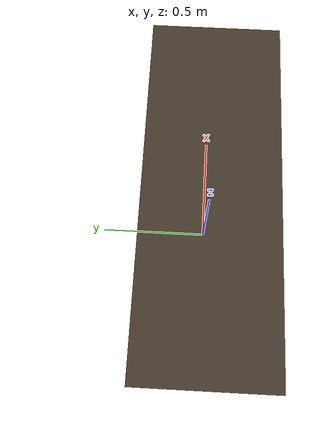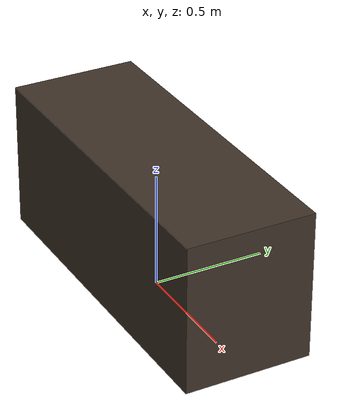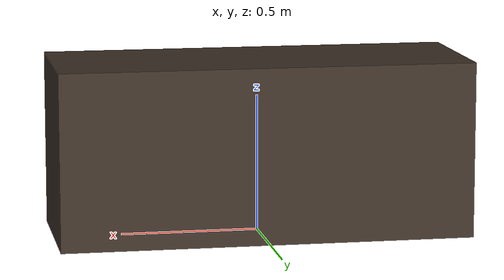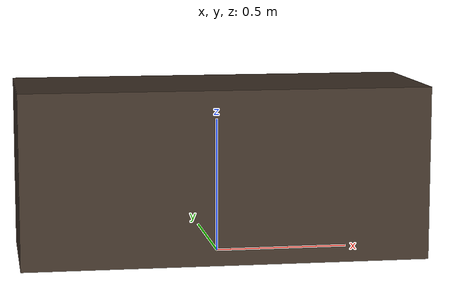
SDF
<?xml version="1.0"?>
<sdf version="1.6">
  <model name="restaurant_planter">
    <static>true</static>
    <link name="box">
      <pose>0 0 0.32 0 0 0</pose>
      <collision name="collision">
        <geometry>
          <box>
            <size>1.5 0.55 0.64</size>
          </box>
        </geometry>
      </collision>
      <visual name="visual">
        <geometry>
          <box>
            <size>1.5 0.55 0.64</size>
          </box>
        </geometry>
        <material>
          <ambient>0.25 0.20 0.16 1</ambient>
          <diffuse>0.25 0.20 0.16 1</diffuse>
        </material>
      </visual>
    </link>
  </model>
</sdf>
